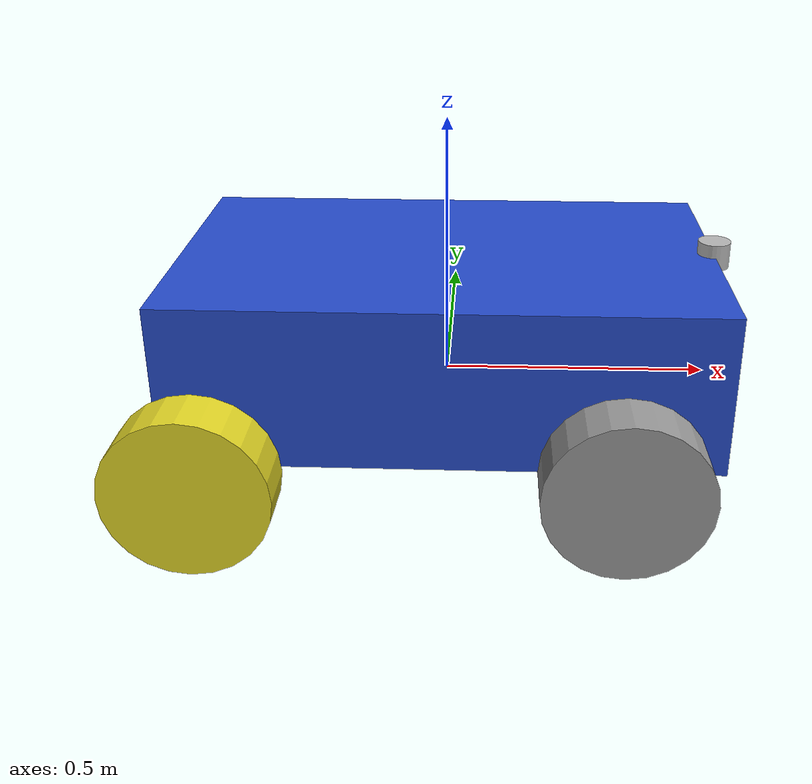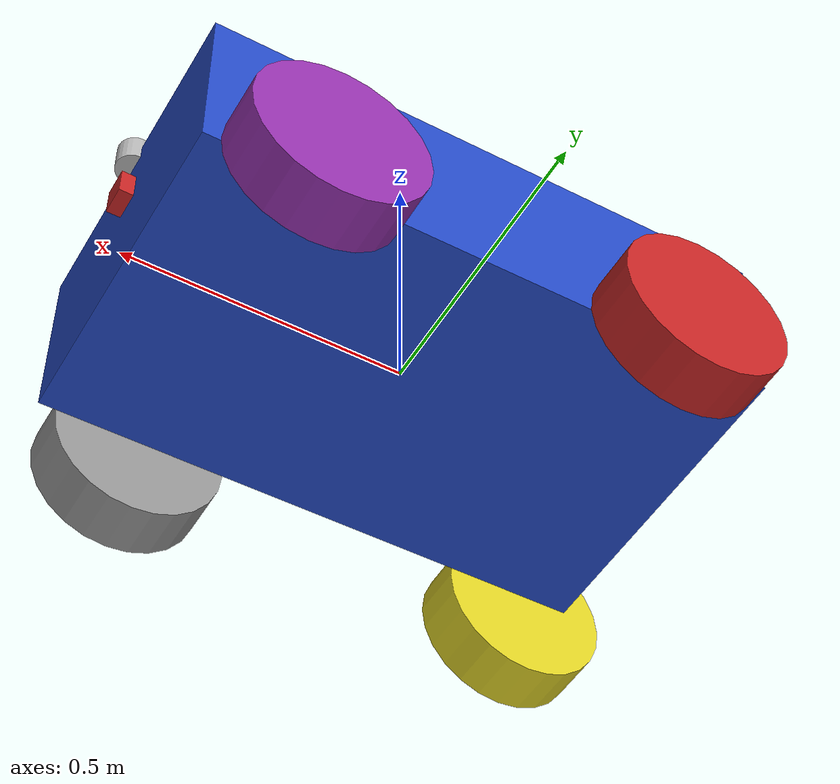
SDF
<sdf version='1.7'>
  <model name='mome'>
    <link name='dummy'>
      <inertial>
        <pose>0.000102 0 1e-05 0 -0 0</pose>
        <mass>487.9</mass>
        <inertia>
          <ixx>18.2928</ixx>
          <ixy>0</ixy>
          <ixz>-0.00249949</ixz>
          <iyy>44.3337</iyy>
          <iyz>0</iyz>
          <izz>55.309</izz>
        </inertia>
      </inertial>
      <velocity_decay/>
      <velocity_decay/>
      <sensor name='camera' type='camera'>
        <update_rate>30</update_rate>
        <camera name='head'>
          <horizontal_fov>1.39626</horizontal_fov>
          <image>
            <width>800</width>
            <height>800</height>
            <format>R8G8B8</format>
          </image>
          <clip>
            <near>0.02</near>
            <far>300</far>
          </clip>
        </camera>
        <plugin name='gazebo_ros_camera_controller' filename='libgazebo_ros_camera.so'>
          <robotNamespace/>
          <always_on>1</always_on>
          <updateRate>0.0</updateRate>
          <cameraName>camera</cameraName>
          <imageTopicName>rgb/image_raw</imageTopicName>
          <cameraInfoTopicName>rgb/camera_info</cameraInfoTopicName>
          <frameName>camera_link</frameName>
          <hackBaseline>0.07</hackBaseline>
          <distortionK1>0.0</distortionK1>
          <distortionK2>0.0</distortionK2>
          <distortionK3>0.0</distortionK3>
          <distortionT1>0.0</distortionT1>
          <distortionT2>0.0</distortionT2>
        </plugin>
        <pose>0.5 0 0.05 0 -0 0</pose>
      </sensor>
      <gravity>1</gravity>
      <velocity_decay/>
      <sensor name='lidar' type='ray'>
        <update_rate>30</update_rate>
        <visualize>1</visualize>
        <ray>
          <scan>
            <horizontal>
              <samples>720</samples>
              <resolution>1</resolution>
              <min_angle>-1.57</min_angle>
              <max_angle>1.57</max_angle>
            </horizontal>
            <vertical>
              <samples>1</samples>
              <min_angle>0</min_angle>
              <max_angle>0</max_angle>
            </vertical>
          </scan>
          <range>
            <min>0.2</min>
            <max>30</max>
            <resolution>0.01</resolution>
          </range>
        </ray>
        <plugin name='gazebo_ros_laser_controller' filename='libgazebo_ros_laser.so'>
          <robotNamespace/>
          <topicName>/scan</topicName>
          <frameName>lidar_link</frameName>
        </plugin>
        <pose>0.5 0 0.15 0 -0 0</pose>
      </sensor>
      <self_collide>0</self_collide>
      <enable_wind>0</enable_wind>
      <kinematic>0</kinematic>
      <pose>-0 0 0.096406 0 -0 0</pose>
      <visual name='dummy_fixed_joint_lump__body_link_visual'>
        <pose>0 0 0 0 -0 0</pose>
        <geometry>
          <box>
            <size>1 0.6 0.3</size>
          </box>
        </geometry>
        <material>
          <script>
            <name>Gazebo/Blue</name>
            <uri>file://media/materials/scripts/gazebo.material</uri>
          </script>
          <shader type='pixel'/>
        </material>
        <transparency>0</transparency>
        <cast_shadows>1</cast_shadows>
      </visual>
      <visual name='dummy_fixed_joint_lump__camera_link_visual_1'>
        <pose>0.5 0 0.05 0 -0 0</pose>
        <geometry>
          <box>
            <size>0.05 0.05 0.05</size>
          </box>
        </geometry>
        <material>
          <script>
            <name>Gazebo/Red</name>
            <uri>file://media/materials/scripts/gazebo.material</uri>
          </script>
          <shader type='pixel'/>
        </material>
        <transparency>0</transparency>
        <cast_shadows>1</cast_shadows>
      </visual>
      <visual name='dummy_fixed_joint_lump__lidar_link_visual_2'>
        <pose>0.5 0 0.15 0 -0 0</pose>
        <geometry>
          <cylinder>
            <length>0.05</length>
            <radius>0.03</radius>
          </cylinder>
        </geometry>
        <material>
          <shader type='pixel'/>
        </material>
        <transparency>0</transparency>
        <cast_shadows>1</cast_shadows>
      </visual>
      <collision name='dummy_fixed_joint_lump__body_link_collision'>
        <laser_retro>0</laser_retro>
        <max_contacts>10</max_contacts>
        <pose>0 0 0 0 -0 0</pose>
        <geometry>
          <box>
            <size>1 0.6 0.3</size>
          </box>
        </geometry>
        <surface>
          <friction>
            <ode>
              <mu>1</mu>
              <mu2>1</mu2>
              <fdir1>0 0 0</fdir1>
              <slip1>0</slip1>
              <slip2>0</slip2>
            </ode>
            <torsional>
              <coefficient>1</coefficient>
              <patch_radius>0</patch_radius>
              <surface_radius>0</surface_radius>
              <use_patch_radius>1</use_patch_radius>
              <ode>
                <slip>0</slip>
              </ode>
            </torsional>
          </friction>
          <bounce>
            <restitution_coefficient>0</restitution_coefficient>
            <threshold>1e+06</threshold>
          </bounce>
          <contact>
            <collide_without_contact>0</collide_without_contact>
            <collide_without_contact_bitmask>1</collide_without_contact_bitmask>
            <collide_bitmask>1</collide_bitmask>
            <ode>
              <soft_cfm>0</soft_cfm>
              <soft_erp>0.2</soft_erp>
              <kp>1e+06</kp>
              <kd>100</kd>
              <max_vel>0.01</max_vel>
              <min_depth>0</min_depth>
            </ode>
            <bullet>
              <split_impulse>1</split_impulse>
              <split_impulse_penetration_threshold>-0.01</split_impulse_penetration_threshold>
              <soft_cfm>0</soft_cfm>
              <soft_erp>0.2</soft_erp>
              <kp>1e+06</kp>
              <kd>100</kd>
            </bullet>
          </contact>
        </surface>
      </collision>
      <collision name='dummy_fixed_joint_lump__camera_link_collision_1'>
        <laser_retro>0</laser_retro>
        <max_contacts>10</max_contacts>
        <pose>0.5 0 0.05 0 -0 0</pose>
        <geometry>
          <box>
            <size>0.05 0.05 0.05</size>
          </box>
        </geometry>
        <surface>
          <friction>
            <ode>
              <mu>1</mu>
              <mu2>1</mu2>
              <fdir1>0 0 0</fdir1>
              <slip1>0</slip1>
              <slip2>0</slip2>
            </ode>
            <torsional>
              <coefficient>1</coefficient>
              <patch_radius>0</patch_radius>
              <surface_radius>0</surface_radius>
              <use_patch_radius>1</use_patch_radius>
              <ode>
                <slip>0</slip>
              </ode>
            </torsional>
          </friction>
          <bounce>
            <restitution_coefficient>0</restitution_coefficient>
            <threshold>1e+06</threshold>
          </bounce>
          <contact>
            <collide_without_contact>0</collide_without_contact>
            <collide_without_contact_bitmask>1</collide_without_contact_bitmask>
            <collide_bitmask>1</collide_bitmask>
            <ode>
              <soft_cfm>0</soft_cfm>
              <soft_erp>0.2</soft_erp>
              <kp>1e+13</kp>
              <kd>1</kd>
              <max_vel>0.01</max_vel>
              <min_depth>0</min_depth>
            </ode>
            <bullet>
              <split_impulse>1</split_impulse>
              <split_impulse_penetration_threshold>-0.01</split_impulse_penetration_threshold>
              <soft_cfm>0</soft_cfm>
              <soft_erp>0.2</soft_erp>
              <kp>1e+13</kp>
              <kd>1</kd>
            </bullet>
          </contact>
        </surface>
      </collision>
    </link>
    <link name='wheel1_link'>
      <pose>-0.427905 -0.364051 -0.054644 0 -0 0</pose>
      <inertial>
        <pose>0 0 0 0 1.57079 1.57079</pose>
        <mass>19.1559</mass>
        <inertia>
          <ixx>0.123715</ixx>
          <ixy>0</ixy>
          <ixz>0</ixz>
          <iyy>0.123715</iyy>
          <iyz>0</iyz>
          <izz>0.215503</izz>
        </inertia>
      </inertial>
      <gravity>1</gravity>
      <velocity_decay/>
      <self_collide>0</self_collide>
      <enable_wind>0</enable_wind>
      <kinematic>0</kinematic>
      <visual name='wheel1_link_visual'>
        <pose>0 0 0 1.57549 1.57079 -3.1369</pose>
        <geometry>
          <cylinder>
            <length>0.1</length>
            <radius>0.15</radius>
          </cylinder>
        </geometry>
        <material>
          <script>
            <name>Gazebo/Yellow</name>
            <uri>file://media/materials/scripts/gazebo.material</uri>
          </script>
          <shader type='pixel'/>
        </material>
        <transparency>0</transparency>
        <cast_shadows>1</cast_shadows>
      </visual>
      <collision name='wheel1_link_collision'>
        <laser_retro>0</laser_retro>
        <max_contacts>10</max_contacts>
        <pose>0 0 0 1.5708 1.57079 -3.14159</pose>
        <geometry>
          <cylinder>
            <radius>0.15</radius>
            <length>0.1</length>
          </cylinder>
        </geometry>
        <surface>
          <friction>
            <ode>
              <mu>1</mu>
              <mu2>1</mu2>
              <fdir1>0 0 0</fdir1>
              <slip1>0</slip1>
              <slip2>0</slip2>
            </ode>
            <torsional>
              <coefficient>1</coefficient>
              <patch_radius>0</patch_radius>
              <surface_radius>0</surface_radius>
              <use_patch_radius>1</use_patch_radius>
              <ode>
                <slip>0</slip>
              </ode>
            </torsional>
          </friction>
          <bounce>
            <restitution_coefficient>0</restitution_coefficient>
            <threshold>1e+06</threshold>
          </bounce>
          <contact>
            <collide_without_contact>0</collide_without_contact>
            <collide_without_contact_bitmask>1</collide_without_contact_bitmask>
            <collide_bitmask>1</collide_bitmask>
            <ode>
              <soft_cfm>0</soft_cfm>
              <soft_erp>0.2</soft_erp>
              <kp>1e+06</kp>
              <kd>100</kd>
              <max_vel>0.01</max_vel>
              <min_depth>0</min_depth>
            </ode>
            <bullet>
              <split_impulse>1</split_impulse>
              <split_impulse_penetration_threshold>-0.01</split_impulse_penetration_threshold>
              <soft_cfm>0</soft_cfm>
              <soft_erp>0.2</soft_erp>
              <kp>1e+06</kp>
              <kd>100</kd>
            </bullet>
          </contact>
        </surface>
      </collision>
    </link>
    <link name='wheel2_link'>
      <pose>-0.32 0.35 -0.054223 0 -0 0</pose>
      <inertial>
        <pose>0 0 0 0 1.57079 1.57079</pose>
        <mass>19.1559</mass>
        <inertia>
          <ixx>0.123715</ixx>
          <ixy>0</ixy>
          <ixz>0</ixz>
          <iyy>0.123715</iyy>
          <iyz>0</iyz>
          <izz>0.215503</izz>
        </inertia>
      </inertial>
      <gravity>1</gravity>
      <velocity_decay/>
      <self_collide>0</self_collide>
      <enable_wind>0</enable_wind>
      <kinematic>0</kinematic>
      <visual name='wheel2_link_visual'>
        <pose>0 0 0 1.57549 1.57079 -3.1369</pose>
        <geometry>
          <cylinder>
            <length>0.1</length>
            <radius>0.15</radius>
          </cylinder>
        </geometry>
        <material>
          <script>
            <name>Gazebo/Red</name>
            <uri>file://media/materials/scripts/gazebo.material</uri>
          </script>
          <shader type='pixel'/>
        </material>
        <transparency>0</transparency>
        <cast_shadows>1</cast_shadows>
      </visual>
      <collision name='wheel2_link_collision'>
        <laser_retro>0</laser_retro>
        <max_contacts>10</max_contacts>
        <pose>0 0 0 1.5708 1.57079 -3.14159</pose>
        <geometry>
          <cylinder>
            <radius>0.15</radius>
            <length>0.1</length>
          </cylinder>
        </geometry>
        <surface>
          <friction>
            <ode>
              <mu>0.2</mu>
              <mu2>0.2</mu2>
              <fdir1>0 0 0</fdir1>
              <slip1>0</slip1>
              <slip2>0</slip2>
            </ode>
            <torsional>
              <coefficient>1</coefficient>
              <patch_radius>0</patch_radius>
              <surface_radius>0</surface_radius>
              <use_patch_radius>1</use_patch_radius>
              <ode>
                <slip>0</slip>
              </ode>
            </torsional>
          </friction>
          <bounce>
            <restitution_coefficient>0</restitution_coefficient>
            <threshold>1e+06</threshold>
          </bounce>
          <contact>
            <collide_without_contact>0</collide_without_contact>
            <collide_without_contact_bitmask>1</collide_without_contact_bitmask>
            <collide_bitmask>1</collide_bitmask>
            <ode>
              <soft_cfm>0</soft_cfm>
              <soft_erp>0.2</soft_erp>
              <kp>1e+06</kp>
              <kd>100</kd>
              <max_vel>0.01</max_vel>
              <min_depth>0</min_depth>
            </ode>
            <bullet>
              <split_impulse>1</split_impulse>
              <split_impulse_penetration_threshold>-0.01</split_impulse_penetration_threshold>
              <soft_cfm>0</soft_cfm>
              <soft_erp>0.2</soft_erp>
              <kp>1e+06</kp>
              <kd>100</kd>
            </bullet>
          </contact>
        </surface>
      </collision>
    </link>
    <link name='wheel3_link'>
      <pose>0.32 -0.35 -0.053703 0 -0 0</pose>
      <inertial>
        <pose>0 0 0 0 1.57079 1.57079</pose>
        <mass>19.1559</mass>
        <inertia>
          <ixx>0.123715</ixx>
          <ixy>0</ixy>
          <ixz>0</ixz>
          <iyy>0.123715</iyy>
          <iyz>0</iyz>
          <izz>0.215503</izz>
        </inertia>
      </inertial>
      <gravity>1</gravity>
      <velocity_decay/>
      <self_collide>0</self_collide>
      <enable_wind>0</enable_wind>
      <kinematic>0</kinematic>
      <visual name='wheel3_link_visual'>
        <pose>0 0 0 1.57549 1.57079 -3.1369</pose>
        <geometry>
          <cylinder>
            <length>0.1</length>
            <radius>0.15</radius>
          </cylinder>
        </geometry>
        <material>
          <script>
            <name>Gazebo/Grey</name>
            <uri>file://media/materials/scripts/gazebo.material</uri>
          </script>
          <shader type='pixel'/>
        </material>
        <transparency>0</transparency>
        <cast_shadows>1</cast_shadows>
      </visual>
      <collision name='wheel3_link_collision'>
        <laser_retro>0</laser_retro>
        <max_contacts>10</max_contacts>
        <pose>0 0 0 1.5708 1.57079 -3.14159</pose>
        <geometry>
          <cylinder>
            <radius>0.15</radius>
            <length>0.1</length>
          </cylinder>
        </geometry>
        <surface>
          <friction>
            <ode>
              <mu>1</mu>
              <mu2>1</mu2>
              <fdir1>0 0 0</fdir1>
              <slip1>0</slip1>
              <slip2>0</slip2>
            </ode>
            <torsional>
              <coefficient>1</coefficient>
              <patch_radius>0</patch_radius>
              <surface_radius>0</surface_radius>
              <use_patch_radius>1</use_patch_radius>
              <ode>
                <slip>0</slip>
              </ode>
            </torsional>
          </friction>
          <bounce>
            <restitution_coefficient>0</restitution_coefficient>
            <threshold>1e+06</threshold>
          </bounce>
          <contact>
            <collide_without_contact>0</collide_without_contact>
            <collide_without_contact_bitmask>1</collide_without_contact_bitmask>
            <collide_bitmask>1</collide_bitmask>
            <ode>
              <soft_cfm>0</soft_cfm>
              <soft_erp>0.2</soft_erp>
              <kp>1e+06</kp>
              <kd>100</kd>
              <max_vel>0.01</max_vel>
              <min_depth>0</min_depth>
            </ode>
            <bullet>
              <split_impulse>1</split_impulse>
              <split_impulse_penetration_threshold>-0.01</split_impulse_penetration_threshold>
              <soft_cfm>0</soft_cfm>
              <soft_erp>0.2</soft_erp>
              <kp>1e+06</kp>
              <kd>100</kd>
            </bullet>
          </contact>
        </surface>
      </collision>
    </link>
    <link name='wheel4_link'>
      <pose>0.32 0.35 -0.047767 0 -0 0</pose>
      <inertial>
        <pose>0 0 0 0 1.57079 1.57079</pose>
        <mass>19.1559</mass>
        <inertia>
          <ixx>0.123715</ixx>
          <ixy>0</ixy>
          <ixz>0</ixz>
          <iyy>0.123715</iyy>
          <iyz>0</iyz>
          <izz>0.215503</izz>
        </inertia>
      </inertial>
      <gravity>1</gravity>
      <velocity_decay/>
      <self_collide>0</self_collide>
      <enable_wind>0</enable_wind>
      <kinematic>0</kinematic>
      <visual name='wheel4_link_visual'>
        <pose>0 0 0 1.57549 1.57079 -3.1369</pose>
        <geometry>
          <cylinder>
            <length>0.1</length>
            <radius>0.15</radius>
          </cylinder>
        </geometry>
        <material>
          <script>
            <name>Gazebo/Purple</name>
            <uri>file://media/materials/scripts/gazebo.material</uri>
          </script>
          <shader type='pixel'/>
        </material>
        <transparency>0</transparency>
        <cast_shadows>1</cast_shadows>
      </visual>
      <collision name='wheel4_link_collision'>
        <laser_retro>0</laser_retro>
        <max_contacts>10</max_contacts>
        <pose>0 0 0 1.5708 1.57079 -3.14159</pose>
        <geometry>
          <cylinder>
            <radius>0.15</radius>
            <length>0.1</length>
          </cylinder>
        </geometry>
        <surface>
          <friction>
            <ode>
              <mu>1</mu>
              <mu2>1</mu2>
              <fdir1>0 0 0</fdir1>
              <slip1>0</slip1>
              <slip2>0</slip2>
            </ode>
            <torsional>
              <coefficient>1</coefficient>
              <patch_radius>0</patch_radius>
              <surface_radius>0</surface_radius>
              <use_patch_radius>1</use_patch_radius>
              <ode>
                <slip>0</slip>
              </ode>
            </torsional>
          </friction>
          <bounce>
            <restitution_coefficient>0</restitution_coefficient>
            <threshold>1e+06</threshold>
          </bounce>
          <contact>
            <collide_without_contact>0</collide_without_contact>
            <collide_without_contact_bitmask>1</collide_without_contact_bitmask>
            <collide_bitmask>1</collide_bitmask>
            <ode>
              <soft_cfm>0</soft_cfm>
              <soft_erp>0.2</soft_erp>
              <kp>1e+06</kp>
              <kd>100</kd>
              <max_vel>0.01</max_vel>
              <min_depth>0</min_depth>
            </ode>
            <bullet>
              <split_impulse>1</split_impulse>
              <split_impulse_penetration_threshold>-0.01</split_impulse_penetration_threshold>
              <soft_cfm>0</soft_cfm>
              <soft_erp>0.2</soft_erp>
              <kp>1e+06</kp>
              <kd>100</kd>
            </bullet>
          </contact>
        </surface>
      </collision>
    </link>
    <joint name='wheel1_joint' type='revolute'>
      <parent>dummy</parent>
      <child>wheel1_link</child>
      <pose>0 0 0 0 -0 0</pose>
      <axis>
        <xyz>0 1 0</xyz>
        <limit>
          <lower>-1e+16</lower>
          <upper>1e+16</upper>
          <effort>-1</effort>
          <velocity>-1</velocity>
        </limit>
        <dynamics>
          <spring_reference>0</spring_reference>
          <spring_stiffness>0</spring_stiffness>
          <damping>1</damping>
          <friction>1</friction>
        </dynamics>
      </axis>
      <physics>
        <ode>
          <limit>
            <cfm>0</cfm>
            <erp>0.2</erp>
          </limit>
          <suspension>
            <cfm>0</cfm>
            <erp>0.2</erp>
          </suspension>
        </ode>
      </physics>
    </joint>
    <joint name='wheel2_joint' type='revolute'>
      <parent>dummy</parent>
      <child>wheel2_link</child>
      <pose>0 0 0 0 -0 0</pose>
      <axis>
        <xyz>0 1 0</xyz>
        <limit>
          <lower>-1e+16</lower>
          <upper>1e+16</upper>
          <effort>-1</effort>
          <velocity>-1</velocity>
        </limit>
        <dynamics>
          <spring_reference>0</spring_reference>
          <spring_stiffness>0</spring_stiffness>
          <damping>1</damping>
          <friction>1</friction>
        </dynamics>
      </axis>
      <physics>
        <ode>
          <limit>
            <cfm>0</cfm>
            <erp>0.2</erp>
          </limit>
          <suspension>
            <cfm>0</cfm>
            <erp>0.2</erp>
          </suspension>
        </ode>
      </physics>
    </joint>
    <joint name='wheel3_joint' type='revolute'>
      <parent>dummy</parent>
      <child>wheel3_link</child>
      <pose>0 0 0 0 -0 0</pose>
      <axis>
        <xyz>0 1 0</xyz>
        <limit>
          <lower>-1e+16</lower>
          <upper>1e+16</upper>
          <effort>-1</effort>
          <velocity>-1</velocity>
        </limit>
        <dynamics>
          <spring_reference>0</spring_reference>
          <spring_stiffness>0</spring_stiffness>
          <damping>1</damping>
          <friction>1</friction>
        </dynamics>
      </axis>
      <physics>
        <ode>
          <limit>
            <cfm>0</cfm>
            <erp>0.2</erp>
          </limit>
          <suspension>
            <cfm>0</cfm>
            <erp>0.2</erp>
          </suspension>
        </ode>
      </physics>
    </joint>
    <joint name='wheel4_joint' type='revolute'>
      <parent>dummy</parent>
      <child>wheel4_link</child>
      <pose>0 0 0 0 -0 0</pose>
      <axis>
        <xyz>0 1 0</xyz>
        <limit>
          <lower>-1e+16</lower>
          <upper>1e+16</upper>
          <effort>-1</effort>
          <velocity>-1</velocity>
        </limit>
        <dynamics>
          <spring_reference>0</spring_reference>
          <spring_stiffness>0</spring_stiffness>
          <damping>1</damping>
          <friction>1</friction>
        </dynamics>
      </axis>
      <physics>
        <ode>
          <limit>
            <cfm>0</cfm>
            <erp>0.2</erp>
          </limit>
          <suspension>
            <cfm>0</cfm>
            <erp>0.2</erp>
          </suspension>
        </ode>
      </physics>
    </joint>
    <static>0</static>
    <allow_auto_disable>1</allow_auto_disable>
    <plugin name='skid_steer_drive_controller' filename='libgazebo_ros_skid_steer_drive.so'>
      <updateRate>10.0</updateRate>
      <robotNamespace/>
      <leftFrontJoint>wheel4_joint</leftFrontJoint>
      <rightFrontJoint>wheel3_joint</rightFrontJoint>
      <leftRearJoint>wheel2_joint</leftRearJoint>
      <rightRearJoint>wheel1_joint</rightRearJoint>
      <wheelSeparation>0.7</wheelSeparation>
      <wheelDiameter>0.15</wheelDiameter>
      <torque>100</torque>
      <commandTopic>cmd_vel</commandTopic>
      <odometryTopic>odom</odometryTopic>
      <odometryFrame>odom</odometryFrame>
      <robotBaseFrame>dummy</robotBaseFrame>
      <publishWheelTF>1</publishWheelTF>
      <broadcastTF>1</broadcastTF>
      <publishOdom>1</publishOdom>
      <publishWheelJointState>1</publishWheelJointState>
      <topic_name_twist>cmd_vel</topic_name_twist>
      <topic_name_odometry>odom</topic_name_odometry>
      <topic_name_joint>joint</topic_name_joint>
      <covariance_x>0.0001</covariance_x>
      <covariance_y>0.0001</covariance_y>
      <covariance_yaw>0.01</covariance_yaw>
    </plugin>
  </model>
</sdf>
